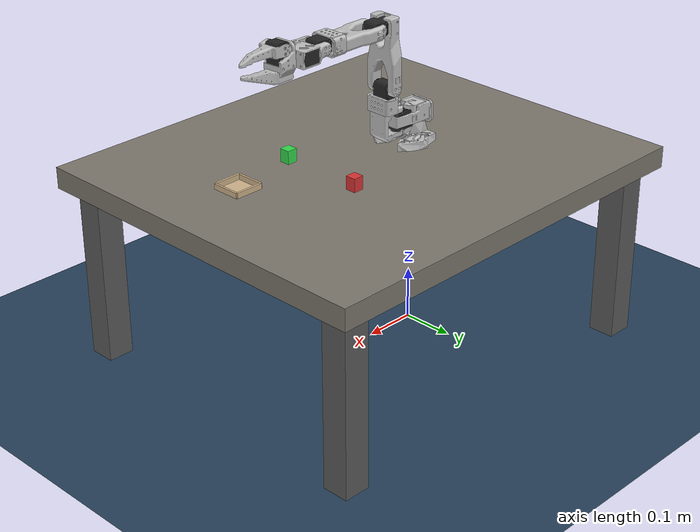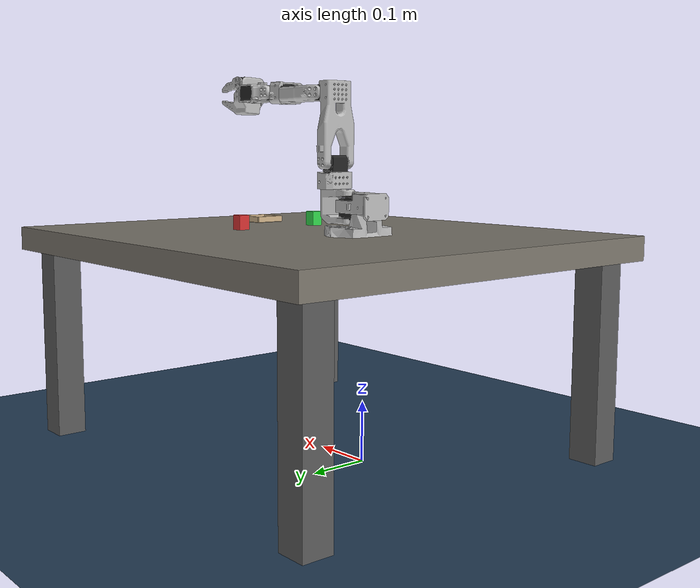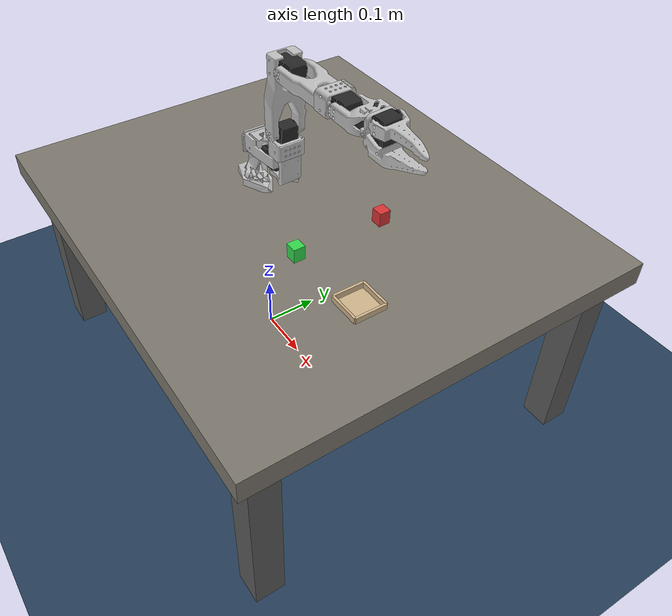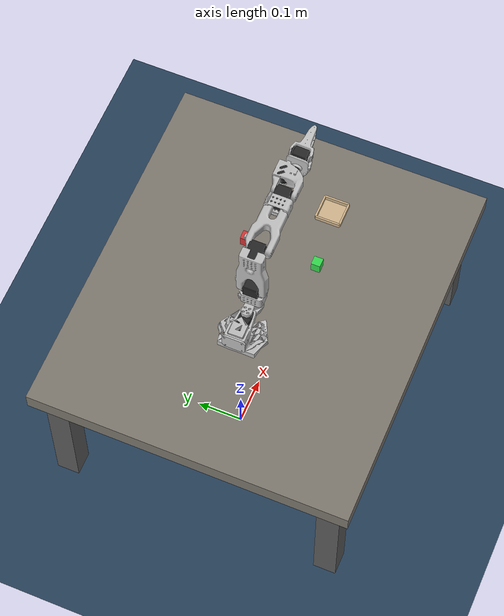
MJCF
<mujoco model="pick_scene">
  <include file="so101_new_calib.xml"/>

  <!-- Suppress contact slippage: elliptic cones + high impratio + noslip post-processing -->
  <option impratio="10" cone="elliptic" noslip_iterations="3"/>

  <visual>
    <quality shadowsize="0"/>
    <headlight diffuse="0.6 0.6 0.6" ambient="0.3 0.3 0.3" specular="0 0 0"/>
    <rgba haze="0.15 0.25 0.35 1"/>
    <global azimuth="160" elevation="-20" offwidth="1280" offheight="720"/>
  </visual>

  <asset>
    <texture type="skybox" builtin="gradient" rgb1="0.3 0.5 0.7" rgb2="0 0 0"
             width="512" height="3072"/>
    <texture type="2d" name="groundplane" builtin="checker" mark="edge"
             rgb1="0.2 0.3 0.4" rgb2="0.1 0.2 0.3" markrgb="0.8 0.8 0.8"
             width="300" height="300"/>
    <material name="groundplane" texture="groundplane" texuniform="true"
              texrepeat="5 5" reflectance="0"/>
    <texture type="2d" name="table_tex" builtin="checker"
             rgb1="0.52 0.50 0.46" rgb2="0.46 0.44 0.40"
             width="256" height="256"/>
    <material name="table_material" texture="table_tex" texrepeat="8 8"
              rgba="1 1 1 1"/>
    <material name="green_cube_material" rgba="0.2 0.85 0.3 1"/>
    <material name="red_cube_material" rgba="0.85 0.2 0.2 1"/>
    <material name="tray_material" rgba="0.82 0.71 0.55 1"/>
  </asset>

  <worldbody>
    <light pos="0 0 3.5" dir="0 0 -1" directional="true"/>
    <geom name="floor" size="0 0 0.05" pos="0 0 0" type="plane" material="groundplane"/>

    <!-- Table surface: the robot and cube sit on top -->
    <body name="table" pos="0.12 0 0.35">
      <geom type="box" name="table_top" size="0.40 0.35 0.02"
            material="table_material" mass="20"/>
      <!-- Table legs -->
      <geom type="box" size="0.025 0.025 0.165" pos="0.35 0.30 -0.185" rgba="0.36 0.36 0.36 1"/>
      <geom type="box" size="0.025 0.025 0.165" pos="-0.35 0.30 -0.185" rgba="0.36 0.36 0.36 1"/>
      <geom type="box" size="0.025 0.025 0.165" pos="0.35 -0.30 -0.185" rgba="0.36 0.36 0.36 1"/>
      <geom type="box" size="0.025 0.025 0.165" pos="-0.35 -0.30 -0.185" rgba="0.36 0.36 0.36 1"/>
    </body>

    <!-- Overhead scene camera for VLM / observation — opposite robot base, 45° down, avoids arm occlusion -->
    <camera name="scene_cam" pos="0.55 -0.32 0.82" fovy="55" xyaxes="0.41 0.91 0 -0.57 0.26 0.78" mode="fixed"/>

    <!-- Pick target: green cube with freejoint, sits on table top (table top at z=0.37) -->
    <!-- Keep cubes farther apart in Y to reduce tracker cross-target interference. -->
    <body name="green_cube" pos="0.225 -0.08 0.3825">
      <freejoint name="green_cube_joint"/>
      <geom type="box" name="green_cube_geom" size="0.01 0.01 0.0125"
            mass="0.05" material="green_cube_material"
            friction="2.0 0.1 0.001"
            condim="4" priority="1"/>
    </body>

    <!-- Distractor: red cube with freejoint, offset in Y away from green cube -->
    <body name="red_cube" pos="0.225 0.08 0.3825">
      <freejoint name="red_cube_joint"/>
      <geom type="box" name="red_cube_geom" size="0.01 0.01 0.0125"
            mass="0.05" material="red_cube_material"
            friction="2.0 0.1 0.001"
            condim="4" priority="1"/>
    </body>

    <!-- Tray: static container for PLACE_IN_TRAY target (no freejoint → no qpos change) -->
    <!-- Interior ~50mm across (roomy for a 20mm cube), 5mm wall height, 2mm wall thickness -->
    <body name="yellow_tray" pos="0.36 -0.06 0.37">
      <!-- Bottom plate -->
      <geom type="box" name="yellow_tray_bottom" size="0.027 0.027 0.001"
            material="tray_material" mass="0.5"/>
      <!-- Front wall (+X) -->
      <geom type="box" size="0.002 0.027 0.005" pos="0.027 0.0 0.006"
            material="tray_material"/>
      <!-- Back wall (-X) -->
      <geom type="box" size="0.002 0.027 0.005" pos="-0.027 0.0 0.006"
            material="tray_material"/>
      <!-- Left wall (-Y) -->
      <geom type="box" size="0.027 0.002 0.005" pos="0.0 -0.027 0.006"
            material="tray_material"/>
      <!-- Right wall (+Y) -->
      <geom type="box" size="0.027 0.002 0.005" pos="0.0 0.027 0.006"
            material="tray_material"/>
    </body>
  </worldbody>

</mujoco>

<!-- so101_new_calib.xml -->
<!-- Generated using onshape-to-robot -->
<!-- Onshape https://cad.onshape.com/documents/7715cc284bb430fe6dab4ffd/w/4fd0791b683777b02f8d975a/e/826c553ede3b7592eb9ca800 -->
<mujoco model="so101_new_calib">
  <compiler angle="radian" meshdir="assets" autolimits="true"/>
  <default>
    <default class="so101_new_calib">
      <joint damping="1" frictionloss="0.1" armature="0.005"/>
      <position kp="50"/>
      <default class="visual">
        <geom type="mesh" contype="0" conaffinity="0" group="2"/>
      </default>
      <default class="collision">
        <geom group="3" friction="2.0 0.1 0.001" condim="4"/>
      </default>
    </default>
  </default>
  <!-- Additional joints_properties.xml -->
  <default>
    <default class="sts3215">
      <geom contype="0" conaffinity="0"/>
      <joint damping="0.60" frictionloss="0.052" armature="0.028"/>
      <position kp="998.22" kv="2.731" forcerange="-2.94 2.94"/>
    </default>
    <default class="backlash">
      <!-- +/- 0.5° of backlash -->
      <joint damping="0.01" frictionloss="0" armature="0.01" limited="true" range="-0.008726646259971648 0.008726646259971648"/>
    </default>
  </default>
  <worldbody>
    <!-- Link base -->
    <body name="base" pos="0 0 0.37" quat="1 0 0 0" childclass="so101_new_calib">
      <inertial pos="0.0137179 -5.19711e-05 0.0334843" mass="0.147" fullinertia="0.000114686 0.000136117 0.000130364 -4.59787e-07 4.97151e-06 9.75275e-08"/>
      <!-- Part base_motor_holder_so101_v1 -->
      <geom type="mesh" class="visual" pos="-0.00636471 -9.94414e-05 -0.0024" quat="0.5 0.5 0.5 0.5" mesh="base_motor_holder_so101_v1" material="base_motor_holder_so101_v1_material"/>
      <!-- Part base_so101_v2 -->
      <geom type="mesh" class="visual" pos="-0.00636471 -8.97657e-09 -0.0024" quat="0.5 0.5 0.5 0.5" mesh="base_so101_v2" material="base_so101_v2_material"/>
      <!-- Part sts3215_03a_v1 -->
      <geom type="mesh" class="visual" pos="0.0263353 -8.97657e-09 0.0437" quat="1 -2.85511e-16 -9.64433e-17 6.12908e-16" mesh="sts3215_03a_v1" material="sts3215_03a_v1_material"/>
      <!-- Part waveshare_mounting_plate_so101_v2 -->
      <geom type="mesh" class="visual" pos="-0.0309827 -0.000199441 0.0474" quat="0.5 0.5 0.5 0.5" mesh="waveshare_mounting_plate_so101_v2" material="waveshare_mounting_plate_so101_v2_material"/>
      <!-- Frame baseframe -->
      <site group="3" name="baseframe" pos="8.67362e-19 9.55596e-18 3.46945e-18" quat="1 -8.17396e-19 3.78392e-17 2.22045e-16"/>
      <!-- Link shoulder -->
      <body name="shoulder" pos="0.0388353 -8.97657e-09 0.0624" quat="3.56167e-16 1.22818e-15 -1 -4.14635e-16">
        <!-- Joint from base to shoulder -->
        <joint axis="0 0 1" name="shoulder_pan" type="hinge" range="-1.9198621771937616 1.9198621771937634" class="sts3215"/>
        <inertial pos="-0.0307604 -1.66727e-05 -0.0252713" mass="0.100006" fullinertia="8.3759e-05 8.10403e-05 2.39783e-05 7.55525e-08 -1.16342e-06 1.54663e-07"/>
        <!-- Part sts3215_03a_v1_2 -->
        <geom type="mesh" class="visual" pos="-0.0303992 0.000422241 -0.0417" quat="0.5 0.5 0.5 -0.5" mesh="sts3215_03a_v1" material="sts3215_03a_v1_material"/>
        <geom type="mesh" class="collision" pos="-0.0303992 0.000422241 -0.0417" quat="0.5 0.5 0.5 -0.5" mesh="sts3215_03a_v1" material="sts3215_03a_v1_material"/>
        <!-- Part motor_holder_so101_base_v1 -->
        <geom type="mesh" class="visual" pos="-0.0675992 -0.000177759 0.0158499" quat="0.5 0.5 -0.5 0.5" mesh="motor_holder_so101_base_v1" material="motor_holder_so101_base_v1_material"/>
        <geom type="mesh" class="collision" pos="-0.0675992 -0.000177759 0.0158499" quat="0.5 0.5 -0.5 0.5" mesh="motor_holder_so101_base_v1" material="motor_holder_so101_base_v1_material"/>
        <!-- Part rotation_pitch_so101_v1 -->
        <geom type="mesh" class="visual" pos="0.0122008 2.22413e-05 0.0464" quat="0.707107 -0.707107 -0 8.3163e-34" mesh="rotation_pitch_so101_v1" material="rotation_pitch_so101_v1_material"/>
        <geom type="mesh" class="collision" pos="0.0122008 2.22413e-05 0.0464" quat="0.707107 -0.707107 -0 8.3163e-34" mesh="rotation_pitch_so101_v1" material="rotation_pitch_so101_v1_material"/>
        <!-- Link upper_arm -->
        <body name="upper_arm" pos="-0.0303992 -0.0182778 -0.0542" quat="0.5 -0.5 -0.5 -0.5">
          <!-- Joint from shoulder to upper_arm -->
          <joint axis="0 0 1" name="shoulder_lift" type="hinge" range="-1.7453292519943224 1.7453292519943366" class="sts3215"/>
          <inertial pos="-0.0898471 -0.00838224 0.0184089" mass="0.103" fullinertia="4.08002e-05 0.000147318 0.000142487 -1.97819e-05 -4.03016e-08 8.97326e-09"/>
          <!-- Part sts3215_03a_v1_3 -->
          <geom type="mesh" class="visual" pos="-0.11257 -0.0155 0.0187" quat="4.56308e-16 -0.707107 0.707107 -1.37383e-16" mesh="sts3215_03a_v1" material="sts3215_03a_v1_material"/>
          <geom type="mesh" class="collision" pos="-0.11257 -0.0155 0.0187" quat="4.56308e-16 -0.707107 0.707107 -1.37383e-16" mesh="sts3215_03a_v1" material="sts3215_03a_v1_material"/>
          <!-- Part upper_arm_so101_v1 -->
          <geom type="mesh" class="visual" pos="-0.065085 0.012 0.0182" quat="0 1 0 0" mesh="upper_arm_so101_v1" material="upper_arm_so101_v1_material"/>
          <geom type="mesh" class="collision" pos="-0.065085 0.012 0.0182" quat="0 1 0 0" mesh="upper_arm_so101_v1" material="upper_arm_so101_v1_material"/>
          <!-- Link lower_arm -->
          <body name="lower_arm" pos="-0.11257 -0.028 1.73763e-16" quat="0.707107 -5.98613e-17 -2.58051e-17 0.707107">
            <!-- Joint from upper_arm to lower_arm -->
            <!-- Note: 5-degree calibration offset applied to joint range -->
            <joint axis="0 0 1" name="elbow_flex" type="hinge" range="-1.69 1.69" class="sts3215"/>
            <inertial pos="-0.0980701 0.00324376 0.0182831" mass="0.104" fullinertia="2.87438e-05 0.000159844 0.00014529 7.41152e-06 1.26409e-06 -4.90188e-08"/>
            <!-- Part under_arm_so101_v1 -->
            <geom type="mesh" class="visual" pos="-0.0648499 -0.032 0.0182" quat="0 1 0 0" mesh="under_arm_so101_v1" material="under_arm_so101_v1_material"/>
            <geom type="mesh" class="collision" pos="-0.0648499 -0.032 0.0182" quat="0 1 0 0" mesh="under_arm_so101_v1" material="under_arm_so101_v1_material"/>
            <!-- Part motor_holder_so101_wrist_v1 -->
            <geom type="mesh" class="visual" pos="-0.0648499 -0.032 0.018" quat="3.92687e-16 -1 -1.9186e-15 -6.38378e-16" mesh="motor_holder_so101_wrist_v1" material="motor_holder_so101_wrist_v1_material"/>
            <geom type="mesh" class="collision" pos="-0.0648499 -0.032 0.018" quat="3.92687e-16 -1 -1.9186e-15 -6.38378e-16" mesh="motor_holder_so101_wrist_v1" material="motor_holder_so101_wrist_v1_material"/>
            <!-- Part sts3215_03a_v1_4 -->
            <geom type="mesh" class="visual" pos="-0.1224 0.0052 0.0187" quat="7.21645e-16 1.56949e-15 1 -3.33067e-16" mesh="sts3215_03a_v1" material="sts3215_03a_v1_material"/>
            <geom type="mesh" class="collision" pos="-0.1224 0.0052 0.0187" quat="7.21645e-16 1.56949e-15 1 -3.33067e-16" mesh="sts3215_03a_v1" material="sts3215_03a_v1_material"/>
            <!-- Link wrist -->
            <body name="wrist" pos="-0.1349 0.0052 3.62355e-17" quat="0.707107 9.58722e-16 -7.51313e-16 -0.707107">
              <!-- Joint from lower_arm to wrist -->
              <joint axis="0 0 1" name="wrist_flex" type="hinge" range="-1.6580628494556928 1.6580627293335335" class="sts3215"/>
              <inertial pos="-0.000103312 -0.0386143 0.0281156" mass="0.079" fullinertia="3.68263e-05 2.5391e-05 2.1e-05 1.7893e-08 -5.28128e-08 3.6412e-06"/>
              <!-- Part sts3215_03a_no_horn_v1 -->
              <geom type="mesh" class="visual" pos="8.32667e-17 -0.0424 0.0306" quat="0.5 0.5 0.5 -0.5" mesh="sts3215_03a_no_horn_v1" material="sts3215_03a_no_horn_v1_material"/>
              <geom type="mesh" class="collision" pos="8.32667e-17 -0.0424 0.0306" quat="0.5 0.5 0.5 -0.5" mesh="sts3215_03a_no_horn_v1" material="sts3215_03a_no_horn_v1_material"/>
              <!-- Part wrist_roll_pitch_so101_v2 -->
              <geom type="mesh" class="visual" pos="0 -0.028 0.0181" quat="0.5 -0.5 -0.5 -0.5" mesh="wrist_roll_pitch_so101_v2" material="wrist_roll_pitch_so101_v2_material"/>
              <geom type="mesh" class="collision" pos="0 -0.028 0.0181" quat="0.5 -0.5 -0.5 -0.5" mesh="wrist_roll_pitch_so101_v2" material="wrist_roll_pitch_so101_v2_material"/>
              <!-- Link gripper -->
              <body name="gripper" pos="5.55112e-17 -0.0611 0.0181" quat="0.0172091 -0.0172091 0.706897 0.706897">
                <!-- Joint from wrist to gripper -->
                <joint axis="0 0 1" name="wrist_roll" type="hinge" range="-2.7438472969992493 2.841206309382605" class="sts3215"/>
                <inertial pos="0.000213627 0.000245138 -0.025187" mass="0.087" fullinertia="2.75087e-05 4.33657e-05 3.45059e-05 -3.35241e-07 -5.7352e-06 -5.17847e-08"/>
                <!-- Part sts3215_03a_v1_5 -->
                <geom type="mesh" class="visual" pos="0.0077 0.0001 -0.0234" quat="0.707107 -0.707107 1.66015e-15 6.45094e-15" mesh="sts3215_03a_v1" material="sts3215_03a_v1_material"/>
                <geom type="mesh" class="collision" pos="0.0077 0.0001 -0.0234" quat="0.707107 -0.707107 1.66015e-15 6.45094e-15" mesh="sts3215_03a_v1" material="sts3215_03a_v1_material"/>
                <!-- Part wrist_roll_follower_so101_v1 -->
                <geom type="mesh" class="visual" pos="8.32667e-17 -0.000218214 0.000949706" quat="0 1 0 0" mesh="wrist_roll_follower_so101_v1" material="wrist_roll_follower_so101_v1_material"/>
                <geom type="mesh" class="collision" pos="8.32667e-17 -0.000218214 0.000949706" quat="0 1 0 0" mesh="wrist_roll_follower_so101_v1" material="wrist_roll_follower_so101_v1_material"/>
                <!-- Frame gripperframe -->
                <site group="3" name="gripperframe" pos="-0.0079 -0.000218121 -0.0981274" quat="0.707107 -0 0.707107 -2.37788e-17"/>
                <!-- Wrist camera: mounted on gripper body, looks along approach direction -->
                <camera name="wrist_cam" pos="0 0 -0.05" xyaxes="0 1 0 -1 0 0" fovy="60"/>
                <!-- Link moving_jaw_so101_v1 -->
                <body name="moving_jaw_so101_v1" pos="0.0202 0.0188 -0.0234" quat="0.707107 0.707107 -1.85362e-08 1.85362e-08">
                  <!-- Joint from gripper to moving_jaw_so101_v1 -->
                  <joint axis="0 0 1" name="gripper" type="hinge" range="-0.17453297762778586 1.7453291995659765" class="sts3215"/>
                  <inertial pos="-0.00157495 -0.0300244 0.0192755" mass="0.012" fullinertia="6.61427e-06 1.89032e-06 5.28738e-06 -3.19807e-07 -5.90717e-09 -1.09945e-07"/>
                  <!-- Part moving_jaw_so101_v1 -->
                  <geom type="mesh" class="visual" pos="-5.55112e-17 -5.55112e-17 0.0189" quat="1 -0 3.00524e-16 -2.00834e-17" mesh="moving_jaw_so101_v1" material="moving_jaw_so101_v1_material"/>
                  <geom type="mesh" class="collision" pos="-5.55112e-17 -5.55112e-17 0.0189" quat="1 -0 3.00524e-16 -2.00834e-17" mesh="moving_jaw_so101_v1" material="moving_jaw_so101_v1_material"/>
                </body>
              </body>
            </body>
          </body>
        </body>
      </body>
    </body>
  </worldbody>
  <asset>
    <mesh file="waveshare_mounting_plate_so101_v2.stl"/>
    <mesh file="sts3215_03a_v1.stl"/>
    <mesh file="motor_holder_so101_base_v1.stl"/>
    <mesh file="wrist_roll_follower_so101_v1.stl"/>
    <mesh file="moving_jaw_so101_v1.stl"/>
    <mesh file="base_motor_holder_so101_v1.stl"/>
    <mesh file="upper_arm_so101_v1.stl"/>
    <mesh file="wrist_roll_pitch_so101_v2.stl"/>
    <mesh file="under_arm_so101_v1.stl"/>
    <mesh file="rotation_pitch_so101_v1.stl"/>
    <mesh file="motor_holder_so101_wrist_v1.stl"/>
    <mesh file="sts3215_03a_no_horn_v1.stl"/>
    <mesh file="base_so101_v2.stl"/>
    <material name="base_motor_holder_so101_v1_material" rgba="0.75 0.75 0.75 1"/>
    <material name="base_so101_v2_material" rgba="0.75 0.75 0.75 1"/>
    <material name="sts3215_03a_v1_material" rgba="0.15 0.15 0.15 1"/>
    <material name="waveshare_mounting_plate_so101_v2_material" rgba="0.75 0.75 0.75 1"/>
    <material name="motor_holder_so101_base_v1_material" rgba="0.75 0.75 0.75 1"/>
    <material name="rotation_pitch_so101_v1_material" rgba="0.75 0.75 0.75 1"/>
    <material name="upper_arm_so101_v1_material" rgba="0.75 0.75 0.75 1"/>
    <material name="under_arm_so101_v1_material" rgba="0.75 0.75 0.75 1"/>
    <material name="motor_holder_so101_wrist_v1_material" rgba="0.75 0.75 0.75 1"/>
    <material name="sts3215_03a_no_horn_v1_material" rgba="0.15 0.15 0.15 1"/>
    <material name="wrist_roll_pitch_so101_v2_material" rgba="0.75 0.75 0.75 1"/>
    <material name="wrist_roll_follower_so101_v1_material" rgba="0.75 0.75 0.75 1"/>
    <material name="moving_jaw_so101_v1_material" rgba="0.75 0.75 0.75 1"/>
  </asset>
  <actuator>
    <position class="sts3215" name="shoulder_pan" joint="shoulder_pan" forcerange="-3.35 3.35" ctrlrange="-1.91986 1.91986"/>
    <position class="sts3215" name="shoulder_lift" joint="shoulder_lift" forcerange="-3.35 3.35" ctrlrange="-1.74533 1.74533"/>
    <position class="sts3215" name="elbow_flex" joint="elbow_flex" forcerange="-3.35 3.35" ctrlrange="-1.69 1.69"/>
    <position class="sts3215" name="wrist_flex" joint="wrist_flex" forcerange="-3.35 3.35" ctrlrange="-1.65806 1.65806"/>
    <position class="sts3215" name="wrist_roll" joint="wrist_roll" forcerange="-3.35 3.35" ctrlrange="-2.74385 2.84121"/>
    <position class="sts3215" name="gripper" joint="gripper" forcerange="-6.0 6.0" ctrlrange="-0.17453 1.74533"/>
  </actuator>
  <equality/>
</mujoco>
